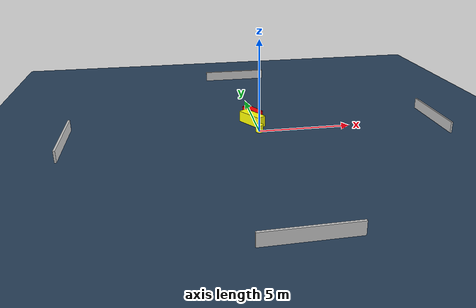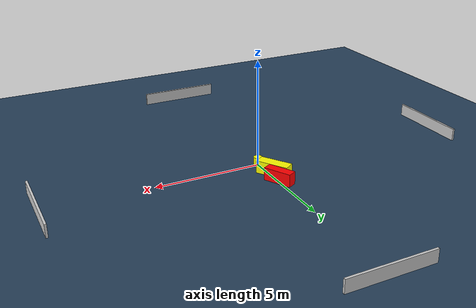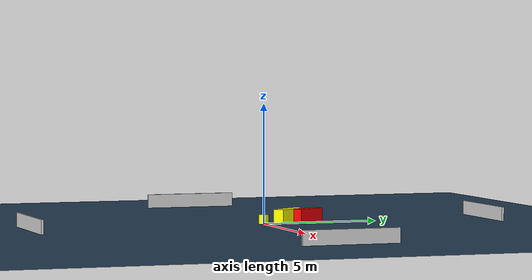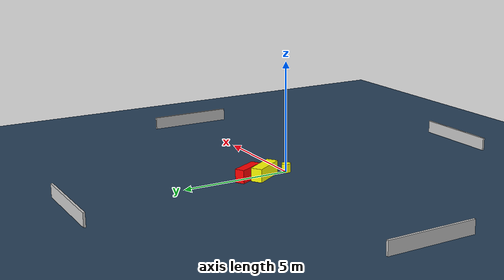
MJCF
<?xml version="1.0" ?>
<mujoco model="generated_environment">
  <option timestep="0.01" integrator="RK4" cone="elliptic"/>
  <default>
    <geom density="1"/>
  </default>
  <asset>
    <texture builtin="gradient" height="3072" name="skybox" rgb1="0.3 0.5 0.7" rgb2="0 0 0" type="skybox" width="512"/>
    <texture builtin="checker" height="300" name="groundplane" rgb1="0.2 0.3 0.4" rgb2="0.1 0.2 0.3" type="2d" width="300"/>
    <material name="groundplane" reflectance="0.2" texrepeat="5 5" texture="groundplane"/>
  </asset>
  <worldbody>
    <light dir="0 0 -1" directional="true" pos="0 0 1.5"/>
    <geom condim="3" friction="0.5 0.005 0.001" material="groundplane" name="floor" pos="0 0 0" size="0 0 0.05" type="plane"/>
    <body name="walls">
      <geom name="wall_1" condim="4" pos="-10.0 0.0 0.3" rgba="0.800000011920929 0.800000011920929 0.800000011920929 1.0" size="0.05 2.0 0.3" type="box"/>
      <geom name="wall_2" condim="4" pos="10.0 0.0 0.3" rgba="0.800000011920929 0.800000011920929 0.800000011920929 1.0" size="0.05 2.0 0.3" type="box"/>
      <geom name="wall_3" condim="4" pos="0.0 -10.0 0.3" rgba="0.800000011920929 0.800000011920929 0.800000011920929 1.0" size="2.0 0.05 0.3" type="box"/>
      <geom name="wall_4" condim="4" pos="0.0 10.0 0.3" rgba="0.800000011920929 0.800000011920929 0.800000011920929 1.0" size="2.0 0.05 0.3" type="box"/>
    </body>
    <body name="robot">
      <joint name="joint_x" type="slide" pos="0 0 0" axis="1 0 0"/>
      <joint name="joint_y" type="slide" pos="0 0 0" axis="0 1 0"/>
      <geom name="robot" type="cylinder" pos="0.0 0.0 0.2" size="0.2 0.2 0.0" mass="5.0" friction="1.0 0.005 0.0001" condim="4" rgba="1.0 1.0 0.0 1.0"/>
    </body>
    <body name="obstacle_1_movable">
      <geom name="obstacle_1_movable" condim="4" pos="-0.1866069396059976 1.2161057576472514 0.3" euler="0 0 32.93690792344129" friction="0.0 0.005 0.001" rgba="1.0 1.0 0.0 1.0" size="0.25969294411926097 0.7734878235444813 0.3" type="box" mass="0.1"/>
      <joint type="free"/>
    </body>
    <body name="obstacle_2_static">
      <geom name="obstacle_2_static" condim="4" pos="-0.04546831737231875 1.9764972932648617 0.3" euler="0 0 28.386653807179027" friction="0.0 0.005 0.001" rgba="1.0 0.0 0.0 1.0" size="0.21754660916710433 0.6599457335152804 0.3" type="box"/>
    </body>
  </worldbody>
  <actuator>
    <motor name="actuator_x" joint="joint_x" gear="1" ctrlrange="-1 1"/>
    <motor name="actuator_y" joint="joint_y" gear="1" ctrlrange="-1 1"/>
  </actuator>
</mujoco>
